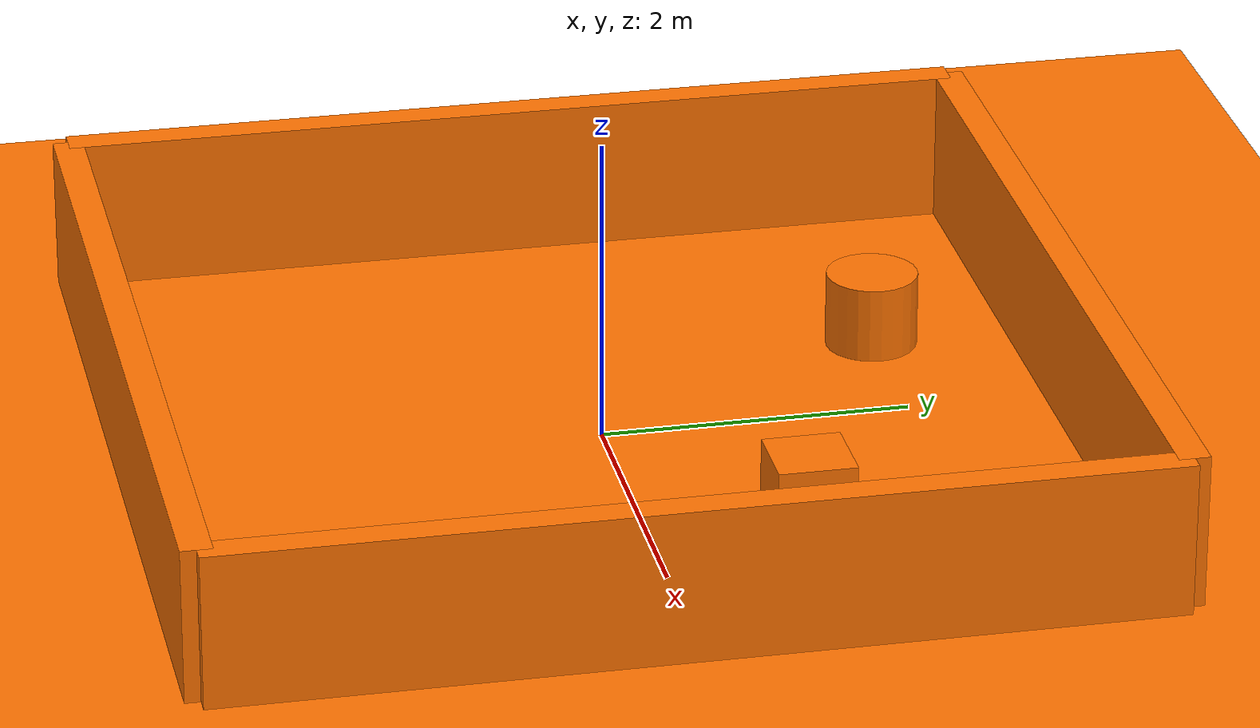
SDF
<?xml version="1.0"?>
<sdf version="1.7">
    <world name="maze_world">
        <!-- Physics -->
        <physics type="ode">
            <max_step_size>0.001</max_step_size>
            <real_time_update_rate>1000</real_time_update_rate>
        </physics>

        <!-- Sun light -->
        <light type="directional" name="sun">
            <cast_shadows>true</cast_shadows>
            <pose>0 0 10 0 0 0</pose>
            <diffuse>0.8 0.8 0.8 1</diffuse>
            <specular>0.2 0.2 0.2 1</specular>
            <attenuation>
                <range>1000</range>
                <constant>0.9</constant>
                <linear>0.01</linear>
                <quadratic>0.001</quadratic>
            </attenuation>
            <direction>-0.5 0.5 -1</direction>
        </light>

        <!-- Ground plane -->
        <model name="ground_plane">
            <static>true</static>
            <link name="link">
                <collision name="collision">
                    <geometry>
                        <plane>
                            <normal>0 0 1</normal>
                            <size>20 20</size>
                        </plane>
                    </geometry>
                </collision>
                <visual name="visual">
                    <geometry>
                        <plane>
                            <normal>0 0 1</normal>
                            <size>20 20</size>
                        </plane>
                    </geometry>
                    <material>
                        <ambient>1.0 0.45 0.0 1</ambient>
                        <diffuse>1.0 0.45 0.0 1</diffuse>
                        <specular>0.2 0.2 0.2 1</specular>
                    </material>
                </visual>
            </link>
        </model>

        <!-- Wall North -->
        <model name="wall_north">
            <static>true</static>
            <link name="link">
                <visual name="visual">
                    <geometry>
                        <box>
                            <size>6 0.2 1</size>
                        </box>
                    </geometry>
                    <material>
                        <ambient>1.0 0.45 0.0 1</ambient>
                        <diffuse>1.0 0.45 0.0 1</diffuse>
                        <specular>0.2 0.2 0.2 1</specular>
                    </material>
                </visual>
                <collision name="collision">
                    <geometry>
                        <box>
                            <size>6 0.2 1</size>
                        </box>
                    </geometry>
                </collision>
                <pose>0 3 0.5 0 0 0</pose>
            </link>
        </model>

        <!-- Wall South -->
        <model name="wall_south">
            <static>true</static>
            <link name="link">
                <visual name="visual">
                    <geometry>
                        <box>
                            <size>6 0.2 1</size>
                        </box>
                    </geometry>
                    <material>
                        <ambient>1.0 0.45 0.0 1</ambient>
                        <diffuse>1.0 0.45 0.0 1</diffuse>
                        <specular>0.2 0.2 0.2 1</specular>
                    </material>
                </visual>
                <collision name="collision">
                    <geometry>
                        <box>
                            <size>6 0.2 1</size>
                        </box>
                    </geometry>
                </collision>
                <pose>0 -3 0.5 0 0 0</pose>
            </link>
        </model>

        <!-- Wall East -->
        <model name="wall_east">
            <static>true</static>
            <link name="link">
                <visual name="visual">
                    <geometry>
                        <box>
                            <size>0.2 6 1</size>
                        </box>
                    </geometry>
                    <material>
                        <ambient>1.0 0.45 0.0 1</ambient>
                        <diffuse>1.0 0.45 0.0 1</diffuse>
                        <specular>0.2 0.2 0.2 1</specular>
                    </material>
                </visual>
                <collision name="collision">
                    <geometry>
                        <box>
                            <size>0.2 6 1</size>
                        </box>
                    </geometry>
                </collision>
                <pose>3 0 0.5 0 0 0</pose>
            </link>
        </model>

        <!-- Wall West -->
        <model name="wall_west">
            <static>true</static>
            <link name="link">
                <visual name="visual">
                    <geometry>
                        <box>
                            <size>0.2 6 1</size>
                        </box>
                    </geometry>
                    <material>
                        <ambient>1.0 0.45 0.0 1</ambient>
                        <diffuse>1.0 0.45 0.0 1</diffuse>
                        <specular>0.2 0.2 0.2 1</specular>
                    </material>
                </visual>
                <collision name="collision">
                    <geometry>
                        <box>
                            <size>0.2 6 1</size>
                        </box>
                    </geometry>
                </collision>
                <pose>-3 0 0.5 0 0 0</pose>
            </link>
        </model>

        <!-- Box obstacle -->
        <model name="box1">
            <static>true</static>
            <link name="link">
                <visual name="visual">
                    <geometry>
                        <box>
                            <size>0.5 0.5 0.5</size>
                        </box>
                    </geometry>
                    <material>
                        <ambient>1.0 0.45 0.0 1</ambient>
                        <diffuse>1.0 0.45 0.0 1</diffuse>
                        <specular>0.2 0.2 0.2 1</specular>
                    </material>
                </visual>
                <collision name="collision">
                    <geometry>
                        <box>
                            <size>0.5 0.5 0.5</size>
                        </box>
                    </geometry>
                </collision>
                <pose>1.5 1.0 0.25 0 0 0</pose>
            </link>
        </model>

        <!-- Cylinder obstacle -->
        <model name="cylinder1">
            <static>true</static>
            <link name="link">
                <visual name="visual">
                    <geometry>
                        <cylinder>
                            <radius>0.3</radius>
                            <length>0.5</length>
                        </cylinder>
                    </geometry>
                    <material>
                        <ambient>1.0 0.45 0.0 1</ambient>
                        <diffuse>1.0 0.45 0.0 1</diffuse>
                        <specular>0.2 0.2 0.2 1</specular>
                    </material>
                </visual>
                <collision name="collision">
                    <geometry>
                        <cylinder>
                            <radius>0.3</radius>
                            <length>0.5</length>
                        </cylinder>
                    </geometry>
                </collision>
                <pose>-1.0 2.0 0.25 0 0 0</pose>
            </link>
        </model>
    </world>
</sdf>
